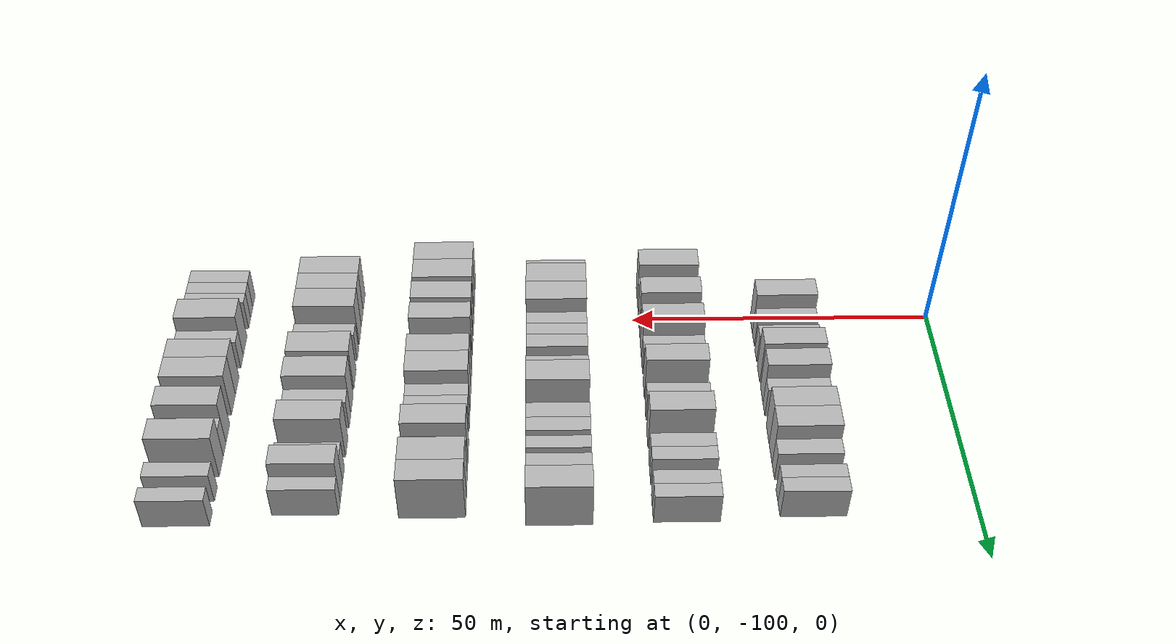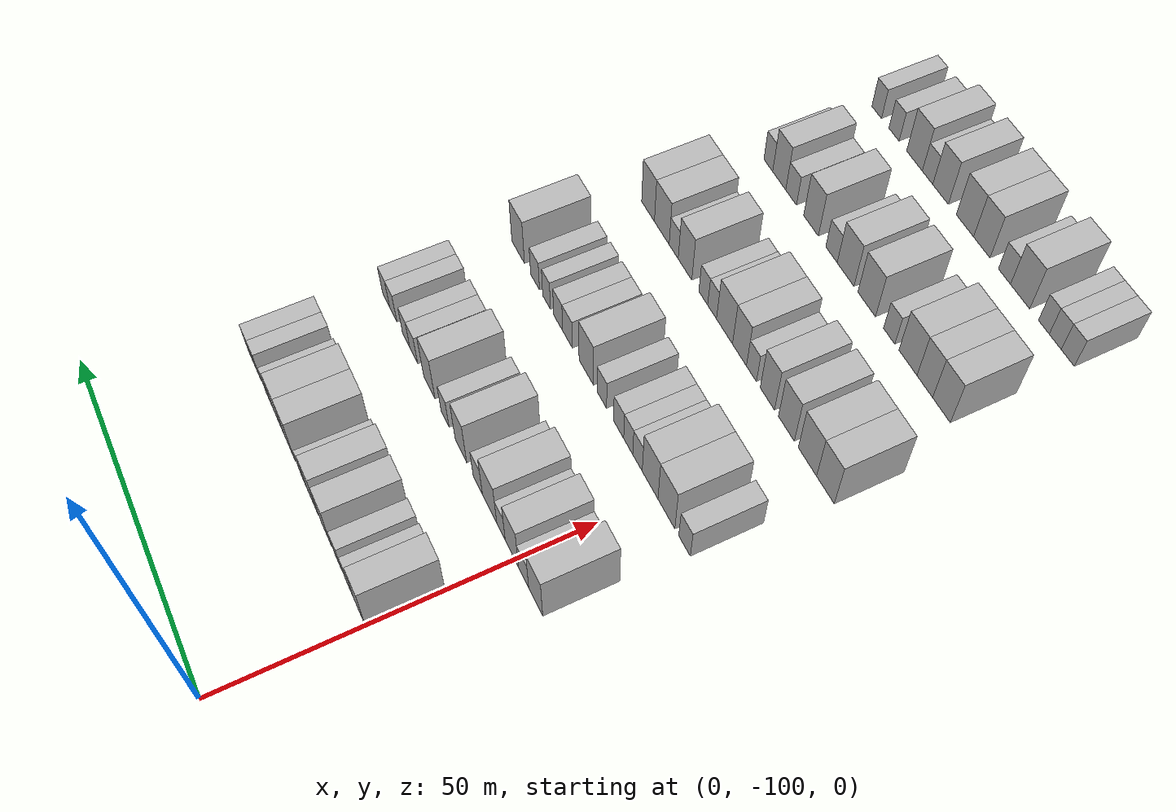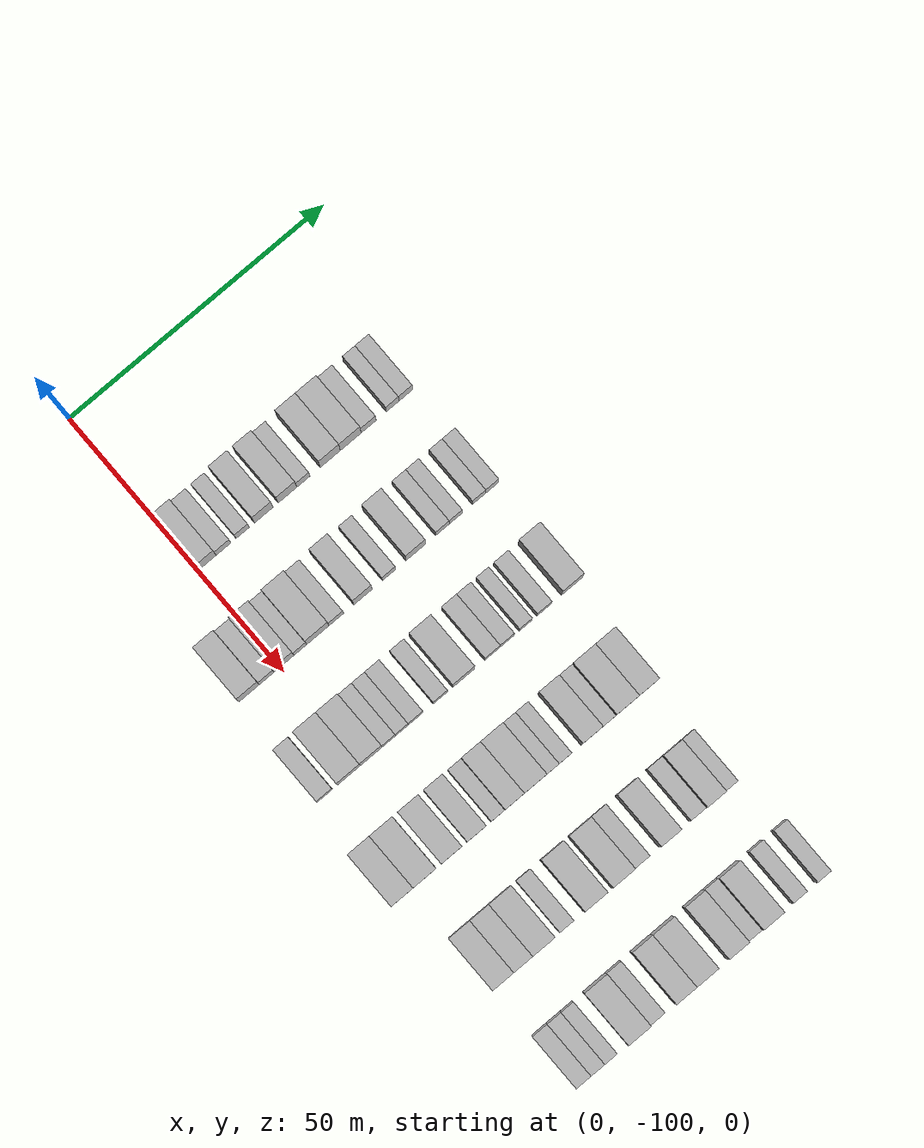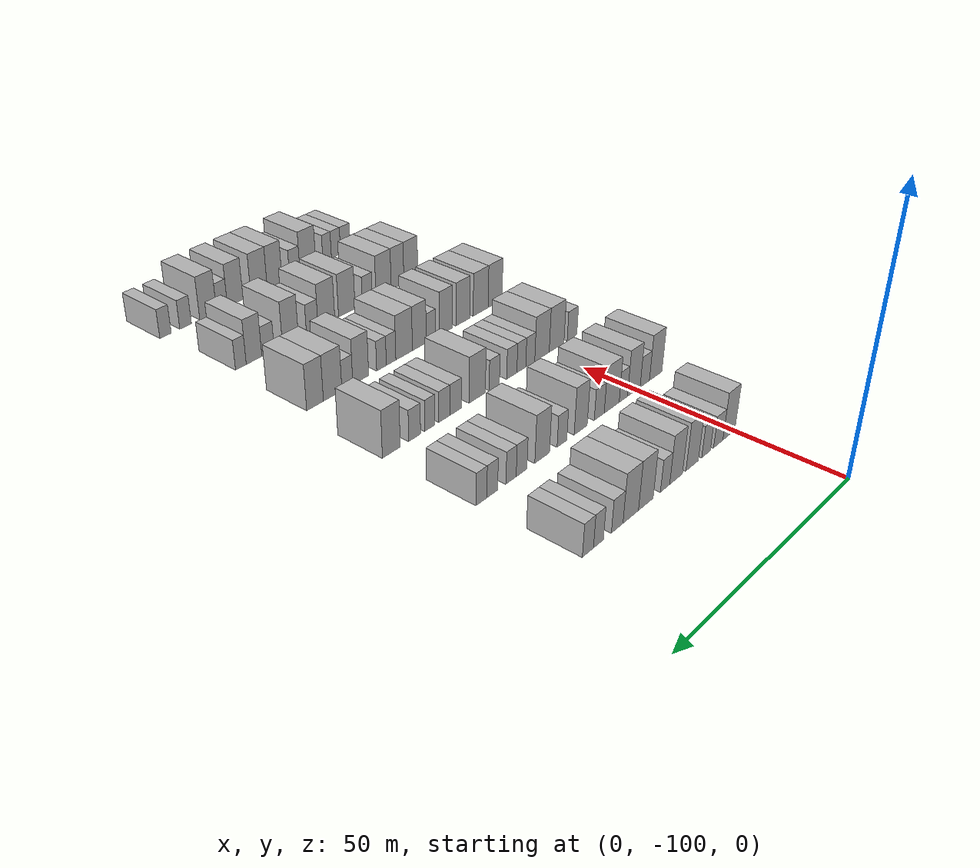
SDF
<sdf version="1.6">
 <world name="default">
  <model name="building_57">
   <static>1</static>
   <pose>25.0000 -98.3331 0 0.000000 0.000000 0.000000</pose>
   <link name="link">
    <pose>0 0 4.50 0 0 0</pose>
    <collision name="collision"><geometry><box><size>10.0000 3.7645 9.0000</size></box></geometry></collision>
    <visual name="visual">
     <cast_shadows>0</cast_shadows>
     <geometry><box><size>10.0000 3.7645 9.0000</size></box></geometry>
     <material>
      <script>
       <uri>model://HANNAS_wall/materials/scripts</uri>
       <uri>model://HANNAS_wall/materials/textures</uri>
       <name>vrc/HANNAS_wall</name>
      </script>
     </material>
    </visual>
   </link>
  </model>
  <model name="building_58">
   <static>1</static>
   <pose>25.0000 -95.0055 0 0.000000 0.000000 0.000000</pose>
   <link name="link">
    <pose>0 0 3.00 0 0 0</pose>
    <collision name="collision"><geometry><box><size>10.0000 2.8907 6.0000</size></box></geometry></collision>
    <visual name="visual">
     <cast_shadows>0</cast_shadows>
     <geometry><box><size>10.0000 2.8907 6.0000</size></box></geometry>
     <material>
      <script>
       <uri>model://HANNAS_wall/materials/scripts</uri>
       <uri>model://HANNAS_wall/materials/textures</uri>
       <name>vrc/HANNAS_wall</name>
      </script>
     </material>
    </visual>
   </link>
  </model>
  <model name="building_59">
   <static>1</static>
   <pose>25.0000 -91.2577 0 0.000000 0.000000 0.000000</pose>
   <link name="link">
    <pose>0 0 3.00 0 0 0</pose>
    <collision name="collision"><geometry><box><size>10.0000 2.6049 6.0000</size></box></geometry></collision>
    <visual name="visual">
     <cast_shadows>0</cast_shadows>
     <geometry><box><size>10.0000 2.6049 6.0000</size></box></geometry>
     <material>
      <script>
       <uri>model://HANNAS_wall/materials/scripts</uri>
       <uri>model://HANNAS_wall/materials/textures</uri>
       <name>vrc/HANNAS_wall</name>
      </script>
     </material>
    </visual>
   </link>
  </model>
  <model name="building_60">
   <static>1</static>
   <pose>25.0000 -87.1309 0 0.000000 0.000000 0.000000</pose>
   <link name="link">
    <pose>0 0 4.50 0 0 0</pose>
    <collision name="collision"><geometry><box><size>10.0000 3.6487 9.0000</size></box></geometry></collision>
    <visual name="visual">
     <cast_shadows>0</cast_shadows>
     <geometry><box><size>10.0000 3.6487 9.0000</size></box></geometry>
     <material>
      <script>
       <uri>model://HANNAS_wall/materials/scripts</uri>
       <uri>model://HANNAS_wall/materials/textures</uri>
       <name>vrc/HANNAS_wall</name>
      </script>
     </material>
    </visual>
   </link>
  </model>
  <model name="building_61">
   <static>1</static>
   <pose>25.0000 -82.4839 0 0.000000 0.000000 0.000000</pose>
   <link name="link">
    <pose>0 0 4.50 0 0 0</pose>
    <collision name="collision"><geometry><box><size>10.0000 3.6453 9.0000</size></box></geometry></collision>
    <visual name="visual">
     <cast_shadows>0</cast_shadows>
     <geometry><box><size>10.0000 3.6453 9.0000</size></box></geometry>
     <material>
      <script>
       <uri>model://HANNAS_wall/materials/scripts</uri>
       <uri>model://HANNAS_wall/materials/textures</uri>
       <name>vrc/HANNAS_wall</name>
      </script>
     </material>
    </visual>
   </link>
  </model>
  <model name="building_62">
   <static>1</static>
   <pose>25.0000 -79.3680 0 0.000000 0.000000 0.000000</pose>
   <link name="link">
    <pose>0 0 3.00 0 0 0</pose>
    <collision name="collision"><geometry><box><size>10.0000 2.5865 6.0000</size></box></geometry></collision>
    <visual name="visual">
     <cast_shadows>0</cast_shadows>
     <geometry><box><size>10.0000 2.5865 6.0000</size></box></geometry>
     <material>
      <script>
       <uri>model://HANNAS_wall/materials/scripts</uri>
       <uri>model://HANNAS_wall/materials/textures</uri>
       <name>vrc/HANNAS_wall</name>
      </script>
     </material>
    </visual>
   </link>
  </model>
  <model name="building_63">
   <static>1</static>
   <pose>25.0000 -74.1008 0 0.000000 0.000000 0.000000</pose>
   <link name="link">
    <pose>0 0 4.50 0 0 0</pose>
    <collision name="collision"><geometry><box><size>10.0000 3.9479 9.0000</size></box></geometry></collision>
    <visual name="visual">
     <cast_shadows>0</cast_shadows>
     <geometry><box><size>10.0000 3.9479 9.0000</size></box></geometry>
     <material>
      <script>
       <uri>model://HANNAS_wall/materials/scripts</uri>
       <uri>model://HANNAS_wall/materials/textures</uri>
       <name>vrc/HANNAS_wall</name>
      </script>
     </material>
    </visual>
   </link>
  </model>
  <model name="building_64">
   <static>1</static>
   <pose>25.0000 -70.0949 0 0.000000 0.000000 0.000000</pose>
   <link name="link">
    <pose>0 0 4.50 0 0 0</pose>
    <collision name="collision"><geometry><box><size>10.0000 4.0637 9.0000</size></box></geometry></collision>
    <visual name="visual">
     <cast_shadows>0</cast_shadows>
     <geometry><box><size>10.0000 4.0637 9.0000</size></box></geometry>
     <material>
      <script>
       <uri>model://HANNAS_wall/materials/scripts</uri>
       <uri>model://HANNAS_wall/materials/textures</uri>
       <name>vrc/HANNAS_wall</name>
      </script>
     </material>
    </visual>
   </link>
  </model>
  <model name="building_65">
   <static>1</static>
   <pose>25.0000 -66.5786 0 0.000000 0.000000 0.000000</pose>
   <link name="link">
    <pose>0 0 3.00 0 0 0</pose>
    <collision name="collision"><geometry><box><size>10.0000 2.9689 6.0000</size></box></geometry></collision>
    <visual name="visual">
     <cast_shadows>0</cast_shadows>
     <geometry><box><size>10.0000 2.9689 6.0000</size></box></geometry>
     <material>
      <script>
       <uri>model://HANNAS_wall/materials/scripts</uri>
       <uri>model://HANNAS_wall/materials/textures</uri>
       <name>vrc/HANNAS_wall</name>
      </script>
     </material>
    </visual>
   </link>
  </model>
  <model name="building_66">
   <static>1</static>
   <pose>25.0000 -61.8662 0 0.000000 0.000000 0.000000</pose>
   <link name="link">
    <pose>0 0 3.00 0 0 0</pose>
    <collision name="collision"><geometry><box><size>10.0000 2.4560 6.0000</size></box></geometry></collision>
    <visual name="visual">
     <cast_shadows>0</cast_shadows>
     <geometry><box><size>10.0000 2.4560 6.0000</size></box></geometry>
     <material>
      <script>
       <uri>model://HANNAS_wall/materials/scripts</uri>
       <uri>model://HANNAS_wall/materials/textures</uri>
       <name>vrc/HANNAS_wall</name>
      </script>
     </material>
    </visual>
   </link>
  </model>
  <model name="building_67">
   <static>1</static>
   <pose>25.0000 -59.2922 0 0.000000 0.000000 0.000000</pose>
   <link name="link">
    <pose>0 0 3.00 0 0 0</pose>
    <collision name="collision"><geometry><box><size>10.0000 2.6919 6.0000</size></box></geometry></collision>
    <visual name="visual">
     <cast_shadows>0</cast_shadows>
     <geometry><box><size>10.0000 2.6919 6.0000</size></box></geometry>
     <material>
      <script>
       <uri>model://HANNAS_wall/materials/scripts</uri>
       <uri>model://HANNAS_wall/materials/textures</uri>
       <name>vrc/HANNAS_wall</name>
      </script>
     </material>
    </visual>
   </link>
  </model>
  <model name="building_219">
   <static>1</static>
   <pose>44.0000 -105.9810 0 0.000000 0.000000 0.000000</pose>
   <link name="link">
    <pose>0 0 4.50 0 0 0</pose>
    <collision name="collision"><geometry><box><size>10.0000 3.9548 9.0000</size></box></geometry></collision>
    <visual name="visual">
     <cast_shadows>0</cast_shadows>
     <geometry><box><size>10.0000 3.9548 9.0000</size></box></geometry>
     <material>
      <script>
       <uri>model://HANNAS_wall/materials/scripts</uri>
       <uri>model://HANNAS_wall/materials/textures</uri>
       <name>vrc/HANNAS_wall</name>
      </script>
     </material>
    </visual>
   </link>
  </model>
  <model name="building_220">
   <static>1</static>
   <pose>44.0000 -102.5574 0 0.000000 0.000000 0.000000</pose>
   <link name="link">
    <pose>0 0 3.00 0 0 0</pose>
    <collision name="collision"><geometry><box><size>10.0000 2.8924 6.0000</size></box></geometry></collision>
    <visual name="visual">
     <cast_shadows>0</cast_shadows>
     <geometry><box><size>10.0000 2.8924 6.0000</size></box></geometry>
     <material>
      <script>
       <uri>model://HANNAS_wall/materials/scripts</uri>
       <uri>model://HANNAS_wall/materials/textures</uri>
       <name>vrc/HANNAS_wall</name>
      </script>
     </material>
    </visual>
   </link>
  </model>
  <model name="building_221">
   <static>1</static>
   <pose>44.0000 -99.1863 0 0.000000 0.000000 0.000000</pose>
   <link name="link">
    <pose>0 0 4.50 0 0 0</pose>
    <collision name="collision"><geometry><box><size>10.0000 3.8497 9.0000</size></box></geometry></collision>
    <visual name="visual">
     <cast_shadows>0</cast_shadows>
     <geometry><box><size>10.0000 3.8497 9.0000</size></box></geometry>
     <material>
      <script>
       <uri>model://HANNAS_wall/materials/scripts</uri>
       <uri>model://HANNAS_wall/materials/textures</uri>
       <name>vrc/HANNAS_wall</name>
      </script>
     </material>
    </visual>
   </link>
  </model>
  <model name="building_222">
   <static>1</static>
   <pose>44.0000 -96.0201 0 0.000000 0.000000 0.000000</pose>
   <link name="link">
    <pose>0 0 3.00 0 0 0</pose>
    <collision name="collision"><geometry><box><size>10.0000 2.4828 6.0000</size></box></geometry></collision>
    <visual name="visual">
     <cast_shadows>0</cast_shadows>
     <geometry><box><size>10.0000 2.4828 6.0000</size></box></geometry>
     <material>
      <script>
       <uri>model://HANNAS_wall/materials/scripts</uri>
       <uri>model://HANNAS_wall/materials/textures</uri>
       <name>vrc/HANNAS_wall</name>
      </script>
     </material>
    </visual>
   </link>
  </model>
  <model name="building_223">
   <static>1</static>
   <pose>44.0000 -92.5894 0 0.000000 0.000000 0.000000</pose>
   <link name="link">
    <pose>0 0 4.50 0 0 0</pose>
    <collision name="collision"><geometry><box><size>10.0000 4.3787 9.0000</size></box></geometry></collision>
    <visual name="visual">
     <cast_shadows>0</cast_shadows>
     <geometry><box><size>10.0000 4.3787 9.0000</size></box></geometry>
     <material>
      <script>
       <uri>model://HANNAS_wall/materials/scripts</uri>
       <uri>model://HANNAS_wall/materials/textures</uri>
       <name>vrc/HANNAS_wall</name>
      </script>
     </material>
    </visual>
   </link>
  </model>
  <model name="building_224">
   <static>1</static>
   <pose>44.0000 -88.9754 0 0.000000 0.000000 0.000000</pose>
   <link name="link">
    <pose>0 0 3.00 0 0 0</pose>
    <collision name="collision"><geometry><box><size>10.0000 2.8493 6.0000</size></box></geometry></collision>
    <visual name="visual">
     <cast_shadows>0</cast_shadows>
     <geometry><box><size>10.0000 2.8493 6.0000</size></box></geometry>
     <material>
      <script>
       <uri>model://HANNAS_wall/materials/scripts</uri>
       <uri>model://HANNAS_wall/materials/textures</uri>
       <name>vrc/HANNAS_wall</name>
      </script>
     </material>
    </visual>
   </link>
  </model>
  <model name="building_225">
   <static>1</static>
   <pose>44.0000 -83.7480 0 0.000000 0.000000 0.000000</pose>
   <link name="link">
    <pose>0 0 4.50 0 0 0</pose>
    <collision name="collision"><geometry><box><size>10.0000 3.6054 9.0000</size></box></geometry></collision>
    <visual name="visual">
     <cast_shadows>0</cast_shadows>
     <geometry><box><size>10.0000 3.6054 9.0000</size></box></geometry>
     <material>
      <script>
       <uri>model://HANNAS_wall/materials/scripts</uri>
       <uri>model://HANNAS_wall/materials/textures</uri>
       <name>vrc/HANNAS_wall</name>
      </script>
     </material>
    </visual>
   </link>
  </model>
  <model name="building_226">
   <static>1</static>
   <pose>44.0000 -78.6449 0 0.000000 0.000000 0.000000</pose>
   <link name="link">
    <pose>0 0 3.00 0 0 0</pose>
    <collision name="collision"><geometry><box><size>10.0000 2.6009 6.0000</size></box></geometry></collision>
    <visual name="visual">
     <cast_shadows>0</cast_shadows>
     <geometry><box><size>10.0000 2.6009 6.0000</size></box></geometry>
     <material>
      <script>
       <uri>model://HANNAS_wall/materials/scripts</uri>
       <uri>model://HANNAS_wall/materials/textures</uri>
       <name>vrc/HANNAS_wall</name>
      </script>
     </material>
    </visual>
   </link>
  </model>
  <model name="building_227">
   <static>1</static>
   <pose>44.0000 -73.4382 0 0.000000 0.000000 0.000000</pose>
   <link name="link">
    <pose>0 0 4.50 0 0 0</pose>
    <collision name="collision"><geometry><box><size>10.0000 3.8125 9.0000</size></box></geometry></collision>
    <visual name="visual">
     <cast_shadows>0</cast_shadows>
     <geometry><box><size>10.0000 3.8125 9.0000</size></box></geometry>
     <material>
      <script>
       <uri>model://HANNAS_wall/materials/scripts</uri>
       <uri>model://HANNAS_wall/materials/textures</uri>
       <name>vrc/HANNAS_wall</name>
      </script>
     </material>
    </visual>
   </link>
  </model>
  <model name="building_228">
   <static>1</static>
   <pose>44.0000 -68.1854 0 0.000000 0.000000 0.000000</pose>
   <link name="link">
    <pose>0 0 3.00 0 0 0</pose>
    <collision name="collision"><geometry><box><size>10.0000 2.6931 6.0000</size></box></geometry></collision>
    <visual name="visual">
     <cast_shadows>0</cast_shadows>
     <geometry><box><size>10.0000 2.6931 6.0000</size></box></geometry>
     <material>
      <script>
       <uri>model://HANNAS_wall/materials/scripts</uri>
       <uri>model://HANNAS_wall/materials/textures</uri>
       <name>vrc/HANNAS_wall</name>
      </script>
     </material>
    </visual>
   </link>
  </model>
  <model name="building_229">
   <static>1</static>
   <pose>44.0000 -65.5705 0 0.000000 0.000000 0.000000</pose>
   <link name="link">
    <pose>0 0 3.00 0 0 0</pose>
    <collision name="collision"><geometry><box><size>10.0000 2.5368 6.0000</size></box></geometry></collision>
    <visual name="visual">
     <cast_shadows>0</cast_shadows>
     <geometry><box><size>10.0000 2.5368 6.0000</size></box></geometry>
     <material>
      <script>
       <uri>model://HANNAS_wall/materials/scripts</uri>
       <uri>model://HANNAS_wall/materials/textures</uri>
       <name>vrc/HANNAS_wall</name>
      </script>
     </material>
    </visual>
   </link>
  </model>
  <model name="building_230">
   <static>1</static>
   <pose>44.0000 -61.0112 0 0.000000 0.000000 0.000000</pose>
   <link name="link">
    <pose>0 0 3.00 0 0 0</pose>
    <collision name="collision"><geometry><box><size>10.0000 2.5818 6.0000</size></box></geometry></collision>
    <visual name="visual">
     <cast_shadows>0</cast_shadows>
     <geometry><box><size>10.0000 2.5818 6.0000</size></box></geometry>
     <material>
      <script>
       <uri>model://HANNAS_wall/materials/scripts</uri>
       <uri>model://HANNAS_wall/materials/textures</uri>
       <name>vrc/HANNAS_wall</name>
      </script>
     </material>
    </visual>
   </link>
  </model>
  <model name="building_231">
   <static>1</static>
   <pose>44.0000 -58.4621 0 0.000000 0.000000 0.000000</pose>
   <link name="link">
    <pose>0 0 3.00 0 0 0</pose>
    <collision name="collision"><geometry><box><size>10.0000 2.5164 6.0000</size></box></geometry></collision>
    <visual name="visual">
     <cast_shadows>0</cast_shadows>
     <geometry><box><size>10.0000 2.5164 6.0000</size></box></geometry>
     <material>
      <script>
       <uri>model://HANNAS_wall/materials/scripts</uri>
       <uri>model://HANNAS_wall/materials/textures</uri>
       <name>vrc/HANNAS_wall</name>
      </script>
     </material>
    </visual>
   </link>
  </model>
  <model name="building_388">
   <static>1</static>
   <pose>63.0000 -107.2550 0 0.000000 0.000000 0.000000</pose>
   <link name="link">
    <pose>0 0 3.00 0 0 0</pose>
    <collision name="collision"><geometry><box><size>10.0000 2.9859 6.0000</size></box></geometry></collision>
    <visual name="visual">
     <cast_shadows>0</cast_shadows>
     <geometry><box><size>10.0000 2.9859 6.0000</size></box></geometry>
     <material>
      <script>
       <uri>model://HANNAS_wall/materials/scripts</uri>
       <uri>model://HANNAS_wall/materials/textures</uri>
       <name>vrc/HANNAS_wall</name>
      </script>
     </material>
    </visual>
   </link>
  </model>
  <model name="building_389">
   <static>1</static>
   <pose>63.0000 -102.5409 0 0.000000 0.000000 0.000000</pose>
   <link name="link">
    <pose>0 0 4.50 0 0 0</pose>
    <collision name="collision"><geometry><box><size>10.0000 4.4423 9.0000</size></box></geometry></collision>
    <visual name="visual">
     <cast_shadows>0</cast_shadows>
     <geometry><box><size>10.0000 4.4423 9.0000</size></box></geometry>
     <material>
      <script>
       <uri>model://HANNAS_wall/materials/scripts</uri>
       <uri>model://HANNAS_wall/materials/textures</uri>
       <name>vrc/HANNAS_wall</name>
      </script>
     </material>
    </visual>
   </link>
  </model>
  <model name="building_390">
   <static>1</static>
   <pose>63.0000 -98.1974 0 0.000000 0.000000 0.000000</pose>
   <link name="link">
    <pose>0 0 4.50 0 0 0</pose>
    <collision name="collision"><geometry><box><size>10.0000 4.2447 9.0000</size></box></geometry></collision>
    <visual name="visual">
     <cast_shadows>0</cast_shadows>
     <geometry><box><size>10.0000 4.2447 9.0000</size></box></geometry>
     <material>
      <script>
       <uri>model://HANNAS_wall/materials/scripts</uri>
       <uri>model://HANNAS_wall/materials/textures</uri>
       <name>vrc/HANNAS_wall</name>
      </script>
     </material>
    </visual>
   </link>
  </model>
  <model name="building_391">
   <static>1</static>
   <pose>63.0000 -94.7735 0 0.000000 0.000000 0.000000</pose>
   <link name="link">
    <pose>0 0 3.00 0 0 0</pose>
    <collision name="collision"><geometry><box><size>10.0000 2.6032 6.0000</size></box></geometry></collision>
    <visual name="visual">
     <cast_shadows>0</cast_shadows>
     <geometry><box><size>10.0000 2.6032 6.0000</size></box></geometry>
     <material>
      <script>
       <uri>model://HANNAS_wall/materials/scripts</uri>
       <uri>model://HANNAS_wall/materials/textures</uri>
       <name>vrc/HANNAS_wall</name>
      </script>
     </material>
    </visual>
   </link>
  </model>
  <model name="building_392">
   <static>1</static>
   <pose>63.0000 -92.2117 0 0.000000 0.000000 0.000000</pose>
   <link name="link">
    <pose>0 0 3.00 0 0 0</pose>
    <collision name="collision"><geometry><box><size>10.0000 2.5205 6.0000</size></box></geometry></collision>
    <visual name="visual">
     <cast_shadows>0</cast_shadows>
     <geometry><box><size>10.0000 2.5205 6.0000</size></box></geometry>
     <material>
      <script>
       <uri>model://HANNAS_wall/materials/scripts</uri>
       <uri>model://HANNAS_wall/materials/textures</uri>
       <name>vrc/HANNAS_wall</name>
      </script>
     </material>
    </visual>
   </link>
  </model>
  <model name="building_393">
   <static>1</static>
   <pose>63.0000 -89.5245 0 0.000000 0.000000 0.000000</pose>
   <link name="link">
    <pose>0 0 3.00 0 0 0</pose>
    <collision name="collision"><geometry><box><size>10.0000 2.8540 6.0000</size></box></geometry></collision>
    <visual name="visual">
     <cast_shadows>0</cast_shadows>
     <geometry><box><size>10.0000 2.8540 6.0000</size></box></geometry>
     <material>
      <script>
       <uri>model://HANNAS_wall/materials/scripts</uri>
       <uri>model://HANNAS_wall/materials/textures</uri>
       <name>vrc/HANNAS_wall</name>
      </script>
     </material>
    </visual>
   </link>
  </model>
  <model name="building_394">
   <static>1</static>
   <pose>63.0000 -84.7015 0 0.000000 0.000000 0.000000</pose>
   <link name="link">
    <pose>0 0 3.00 0 0 0</pose>
    <collision name="collision"><geometry><box><size>10.0000 2.7919 6.0000</size></box></geometry></collision>
    <visual name="visual">
     <cast_shadows>0</cast_shadows>
     <geometry><box><size>10.0000 2.7919 6.0000</size></box></geometry>
     <material>
      <script>
       <uri>model://HANNAS_wall/materials/scripts</uri>
       <uri>model://HANNAS_wall/materials/textures</uri>
       <name>vrc/HANNAS_wall</name>
      </script>
     </material>
    </visual>
   </link>
  </model>
  <model name="building_395">
   <static>1</static>
   <pose>63.0000 -80.1676 0 0.000000 0.000000 0.000000</pose>
   <link name="link">
    <pose>0 0 4.50 0 0 0</pose>
    <collision name="collision"><geometry><box><size>10.0000 4.2760 9.0000</size></box></geometry></collision>
    <visual name="visual">
     <cast_shadows>0</cast_shadows>
     <geometry><box><size>10.0000 4.2760 9.0000</size></box></geometry>
     <material>
      <script>
       <uri>model://HANNAS_wall/materials/scripts</uri>
       <uri>model://HANNAS_wall/materials/textures</uri>
       <name>vrc/HANNAS_wall</name>
      </script>
     </material>
    </visual>
   </link>
  </model>
  <model name="building_396">
   <static>1</static>
   <pose>63.0000 -74.5319 0 0.000000 0.000000 0.000000</pose>
   <link name="link">
    <pose>0 0 3.00 0 0 0</pose>
    <collision name="collision"><geometry><box><size>10.0000 2.9956 6.0000</size></box></geometry></collision>
    <visual name="visual">
     <cast_shadows>0</cast_shadows>
     <geometry><box><size>10.0000 2.9956 6.0000</size></box></geometry>
     <material>
      <script>
       <uri>model://HANNAS_wall/materials/scripts</uri>
       <uri>model://HANNAS_wall/materials/textures</uri>
       <name>vrc/HANNAS_wall</name>
      </script>
     </material>
    </visual>
   </link>
  </model>
  <model name="building_397">
   <static>1</static>
   <pose>63.0000 -71.6559 0 0.000000 0.000000 0.000000</pose>
   <link name="link">
    <pose>0 0 3.00 0 0 0</pose>
    <collision name="collision"><geometry><box><size>10.0000 2.7564 6.0000</size></box></geometry></collision>
    <visual name="visual">
     <cast_shadows>0</cast_shadows>
     <geometry><box><size>10.0000 2.7564 6.0000</size></box></geometry>
     <material>
      <script>
       <uri>model://HANNAS_wall/materials/scripts</uri>
       <uri>model://HANNAS_wall/materials/textures</uri>
       <name>vrc/HANNAS_wall</name>
      </script>
     </material>
    </visual>
   </link>
  </model>
  <model name="building_398">
   <static>1</static>
   <pose>63.0000 -68.0460 0 0.000000 0.000000 0.000000</pose>
   <link name="link">
    <pose>0 0 3.00 0 0 0</pose>
    <collision name="collision"><geometry><box><size>10.0000 2.4634 6.0000</size></box></geometry></collision>
    <visual name="visual">
     <cast_shadows>0</cast_shadows>
     <geometry><box><size>10.0000 2.4634 6.0000</size></box></geometry>
     <material>
      <script>
       <uri>model://HANNAS_wall/materials/scripts</uri>
       <uri>model://HANNAS_wall/materials/textures</uri>
       <name>vrc/HANNAS_wall</name>
      </script>
     </material>
    </visual>
   </link>
  </model>
  <model name="building_399">
   <static>1</static>
   <pose>63.0000 -64.3918 0 0.000000 0.000000 0.000000</pose>
   <link name="link">
    <pose>0 0 3.00 0 0 0</pose>
    <collision name="collision"><geometry><box><size>10.0000 2.8451 6.0000</size></box></geometry></collision>
    <visual name="visual">
     <cast_shadows>0</cast_shadows>
     <geometry><box><size>10.0000 2.8451 6.0000</size></box></geometry>
     <material>
      <script>
       <uri>model://HANNAS_wall/materials/scripts</uri>
       <uri>model://HANNAS_wall/materials/textures</uri>
       <name>vrc/HANNAS_wall</name>
      </script>
     </material>
    </visual>
   </link>
  </model>
  <model name="building_400">
   <static>1</static>
   <pose>63.0000 -58.9068 0 0.000000 0.000000 0.000000</pose>
   <link name="link">
    <pose>0 0 4.50 0 0 0</pose>
    <collision name="collision"><geometry><box><size>10.0000 4.1250 9.0000</size></box></geometry></collision>
    <visual name="visual">
     <cast_shadows>0</cast_shadows>
     <geometry><box><size>10.0000 4.1250 9.0000</size></box></geometry>
     <material>
      <script>
       <uri>model://HANNAS_wall/materials/scripts</uri>
       <uri>model://HANNAS_wall/materials/textures</uri>
       <name>vrc/HANNAS_wall</name>
      </script>
     </material>
    </visual>
   </link>
  </model>
  <model name="building_560">
   <static>1</static>
   <pose>82.0000 -108.1611 0 0.000000 0.000000 0.000000</pose>
   <link name="link">
    <pose>0 0 4.50 0 0 0</pose>
    <collision name="collision"><geometry><box><size>10.0000 4.2252 9.0000</size></box></geometry></collision>
    <visual name="visual">
     <cast_shadows>0</cast_shadows>
     <geometry><box><size>10.0000 4.2252 9.0000</size></box></geometry>
     <material>
      <script>
       <uri>model://HANNAS_wall/materials/scripts</uri>
       <uri>model://HANNAS_wall/materials/textures</uri>
       <name>vrc/HANNAS_wall</name>
      </script>
     </material>
    </visual>
   </link>
  </model>
  <model name="building_561">
   <static>1</static>
   <pose>82.0000 -103.8246 0 0.000000 0.000000 0.000000</pose>
   <link name="link">
    <pose>0 0 4.50 0 0 0</pose>
    <collision name="collision"><geometry><box><size>10.0000 4.4479 9.0000</size></box></geometry></collision>
    <visual name="visual">
     <cast_shadows>0</cast_shadows>
     <geometry><box><size>10.0000 4.4479 9.0000</size></box></geometry>
     <material>
      <script>
       <uri>model://HANNAS_wall/materials/scripts</uri>
       <uri>model://HANNAS_wall/materials/textures</uri>
       <name>vrc/HANNAS_wall</name>
      </script>
     </material>
    </visual>
   </link>
  </model>
  <model name="building_562">
   <static>1</static>
   <pose>82.0000 -98.6031 0 0.000000 0.000000 0.000000</pose>
   <link name="link">
    <pose>0 0 4.50 0 0 0</pose>
    <collision name="collision"><geometry><box><size>10.0000 3.9950 9.0000</size></box></geometry></collision>
    <visual name="visual">
     <cast_shadows>0</cast_shadows>
     <geometry><box><size>10.0000 3.9950 9.0000</size></box></geometry>
     <material>
      <script>
       <uri>model://HANNAS_wall/materials/scripts</uri>
       <uri>model://HANNAS_wall/materials/textures</uri>
       <name>vrc/HANNAS_wall</name>
      </script>
     </material>
    </visual>
   </link>
  </model>
  <model name="building_563">
   <static>1</static>
   <pose>82.0000 -93.7650 0 0.000000 0.000000 0.000000</pose>
   <link name="link">
    <pose>0 0 4.50 0 0 0</pose>
    <collision name="collision"><geometry><box><size>10.0000 3.6813 9.0000</size></box></geometry></collision>
    <visual name="visual">
     <cast_shadows>0</cast_shadows>
     <geometry><box><size>10.0000 3.6813 9.0000</size></box></geometry>
     <material>
      <script>
       <uri>model://HANNAS_wall/materials/scripts</uri>
       <uri>model://HANNAS_wall/materials/textures</uri>
       <name>vrc/HANNAS_wall</name>
      </script>
     </material>
    </visual>
   </link>
  </model>
  <model name="building_564">
   <static>1</static>
   <pose>82.0000 -89.6094 0 0.000000 0.000000 0.000000</pose>
   <link name="link">
    <pose>0 0 3.00 0 0 0</pose>
    <collision name="collision"><geometry><box><size>10.0000 2.6299 6.0000</size></box></geometry></collision>
    <visual name="visual">
     <cast_shadows>0</cast_shadows>
     <geometry><box><size>10.0000 2.6299 6.0000</size></box></geometry>
     <material>
      <script>
       <uri>model://HANNAS_wall/materials/scripts</uri>
       <uri>model://HANNAS_wall/materials/textures</uri>
       <name>vrc/HANNAS_wall</name>
      </script>
     </material>
    </visual>
   </link>
  </model>
  <model name="building_565">
   <static>1</static>
   <pose>82.0000 -86.4310 0 0.000000 0.000000 0.000000</pose>
   <link name="link">
    <pose>0 0 4.50 0 0 0</pose>
    <collision name="collision"><geometry><box><size>10.0000 3.7268 9.0000</size></box></geometry></collision>
    <visual name="visual">
     <cast_shadows>0</cast_shadows>
     <geometry><box><size>10.0000 3.7268 9.0000</size></box></geometry>
     <material>
      <script>
       <uri>model://HANNAS_wall/materials/scripts</uri>
       <uri>model://HANNAS_wall/materials/textures</uri>
       <name>vrc/HANNAS_wall</name>
      </script>
     </material>
    </visual>
   </link>
  </model>
  <model name="building_566">
   <static>1</static>
   <pose>82.0000 -82.3873 0 0.000000 0.000000 0.000000</pose>
   <link name="link">
    <pose>0 0 4.50 0 0 0</pose>
    <collision name="collision"><geometry><box><size>10.0000 4.3607 9.0000</size></box></geometry></collision>
    <visual name="visual">
     <cast_shadows>0</cast_shadows>
     <geometry><box><size>10.0000 4.3607 9.0000</size></box></geometry>
     <material>
      <script>
       <uri>model://HANNAS_wall/materials/scripts</uri>
       <uri>model://HANNAS_wall/materials/textures</uri>
       <name>vrc/HANNAS_wall</name>
      </script>
     </material>
    </visual>
   </link>
  </model>
  <model name="building_567">
   <static>1</static>
   <pose>82.0000 -78.9762 0 0.000000 0.000000 0.000000</pose>
   <link name="link">
    <pose>0 0 3.00 0 0 0</pose>
    <collision name="collision"><geometry><box><size>10.0000 2.4615 6.0000</size></box></geometry></collision>
    <visual name="visual">
     <cast_shadows>0</cast_shadows>
     <geometry><box><size>10.0000 2.4615 6.0000</size></box></geometry>
     <material>
      <script>
       <uri>model://HANNAS_wall/materials/scripts</uri>
       <uri>model://HANNAS_wall/materials/textures</uri>
       <name>vrc/HANNAS_wall</name>
      </script>
     </material>
    </visual>
   </link>
  </model>
  <model name="building_568">
   <static>1</static>
   <pose>82.0000 -76.5109 0 0.000000 0.000000 0.000000</pose>
   <link name="link">
    <pose>0 0 3.00 0 0 0</pose>
    <collision name="collision"><geometry><box><size>10.0000 2.4691 6.0000</size></box></geometry></collision>
    <visual name="visual">
     <cast_shadows>0</cast_shadows>
     <geometry><box><size>10.0000 2.4691 6.0000</size></box></geometry>
     <material>
      <script>
       <uri>model://HANNAS_wall/materials/scripts</uri>
       <uri>model://HANNAS_wall/materials/textures</uri>
       <name>vrc/HANNAS_wall</name>
      </script>
     </material>
    </visual>
   </link>
  </model>
  <model name="building_569">
   <static>1</static>
   <pose>82.0000 -71.3102 0 0.000000 0.000000 0.000000</pose>
   <link name="link">
    <pose>0 0 4.50 0 0 0</pose>
    <collision name="collision"><geometry><box><size>10.0000 3.9322 9.0000</size></box></geometry></collision>
    <visual name="visual">
     <cast_shadows>0</cast_shadows>
     <geometry><box><size>10.0000 3.9322 9.0000</size></box></geometry>
     <material>
      <script>
       <uri>model://HANNAS_wall/materials/scripts</uri>
       <uri>model://HANNAS_wall/materials/textures</uri>
       <name>vrc/HANNAS_wall</name>
      </script>
     </material>
    </visual>
   </link>
  </model>
  <model name="building_570">
   <static>1</static>
   <pose>82.0000 -68.0171 0 0.000000 0.000000 0.000000</pose>
   <link name="link">
    <pose>0 0 3.00 0 0 0</pose>
    <collision name="collision"><geometry><box><size>10.0000 2.6540 6.0000</size></box></geometry></collision>
    <visual name="visual">
     <cast_shadows>0</cast_shadows>
     <geometry><box><size>10.0000 2.6540 6.0000</size></box></geometry>
     <material>
      <script>
       <uri>model://HANNAS_wall/materials/scripts</uri>
       <uri>model://HANNAS_wall/materials/textures</uri>
       <name>vrc/HANNAS_wall</name>
      </script>
     </material>
    </visual>
   </link>
  </model>
  <model name="building_571">
   <static>1</static>
   <pose>82.0000 -64.5013 0 0.000000 0.000000 0.000000</pose>
   <link name="link">
    <pose>0 0 4.50 0 0 0</pose>
    <collision name="collision"><geometry><box><size>10.0000 4.3776 9.0000</size></box></geometry></collision>
    <visual name="visual">
     <cast_shadows>0</cast_shadows>
     <geometry><box><size>10.0000 4.3776 9.0000</size></box></geometry>
     <material>
      <script>
       <uri>model://HANNAS_wall/materials/scripts</uri>
       <uri>model://HANNAS_wall/materials/textures</uri>
       <name>vrc/HANNAS_wall</name>
      </script>
     </material>
    </visual>
   </link>
  </model>
  <model name="building_572">
   <static>1</static>
   <pose>82.0000 -60.3708 0 0.000000 0.000000 0.000000</pose>
   <link name="link">
    <pose>0 0 4.50 0 0 0</pose>
    <collision name="collision"><geometry><box><size>10.0000 3.8835 9.0000</size></box></geometry></collision>
    <visual name="visual">
     <cast_shadows>0</cast_shadows>
     <geometry><box><size>10.0000 3.8835 9.0000</size></box></geometry>
     <material>
      <script>
       <uri>model://HANNAS_wall/materials/scripts</uri>
       <uri>model://HANNAS_wall/materials/textures</uri>
       <name>vrc/HANNAS_wall</name>
      </script>
     </material>
    </visual>
   </link>
  </model>
  <model name="building_742">
   <static>1</static>
   <pose>101.0000 -104.8391 0 0.000000 0.000000 0.000000</pose>
   <link name="link">
    <pose>0 0 4.50 0 0 0</pose>
    <collision name="collision"><geometry><box><size>10.0000 4.0825 9.0000</size></box></geometry></collision>
    <visual name="visual">
     <cast_shadows>0</cast_shadows>
     <geometry><box><size>10.0000 4.0825 9.0000</size></box></geometry>
     <material>
      <script>
       <uri>model://HANNAS_wall/materials/scripts</uri>
       <uri>model://HANNAS_wall/materials/textures</uri>
       <name>vrc/HANNAS_wall</name>
      </script>
     </material>
    </visual>
   </link>
  </model>
  <model name="building_743">
   <static>1</static>
   <pose>101.0000 -100.9646 0 0.000000 0.000000 0.000000</pose>
   <link name="link">
    <pose>0 0 4.50 0 0 0</pose>
    <collision name="collision"><geometry><box><size>10.0000 3.6664 9.0000</size></box></geometry></collision>
    <visual name="visual">
     <cast_shadows>0</cast_shadows>
     <geometry><box><size>10.0000 3.6664 9.0000</size></box></geometry>
     <material>
      <script>
       <uri>model://HANNAS_wall/materials/scripts</uri>
       <uri>model://HANNAS_wall/materials/textures</uri>
       <name>vrc/HANNAS_wall</name>
      </script>
     </material>
    </visual>
   </link>
  </model>
  <model name="building_744">
   <static>1</static>
   <pose>101.0000 -96.9750 0 0.000000 0.000000 0.000000</pose>
   <link name="link">
    <pose>0 0 4.50 0 0 0</pose>
    <collision name="collision"><geometry><box><size>10.0000 4.3130 9.0000</size></box></geometry></collision>
    <visual name="visual">
     <cast_shadows>0</cast_shadows>
     <geometry><box><size>10.0000 4.3130 9.0000</size></box></geometry>
     <material>
      <script>
       <uri>model://HANNAS_wall/materials/scripts</uri>
       <uri>model://HANNAS_wall/materials/textures</uri>
       <name>vrc/HANNAS_wall</name>
      </script>
     </material>
    </visual>
   </link>
  </model>
  <model name="building_745">
   <static>1</static>
   <pose>101.0000 -92.4368 0 0.000000 0.000000 0.000000</pose>
   <link name="link">
    <pose>0 0 3.00 0 0 0</pose>
    <collision name="collision"><geometry><box><size>10.0000 2.7633 6.0000</size></box></geometry></collision>
    <visual name="visual">
     <cast_shadows>0</cast_shadows>
     <geometry><box><size>10.0000 2.7633 6.0000</size></box></geometry>
     <material>
      <script>
       <uri>model://HANNAS_wall/materials/scripts</uri>
       <uri>model://HANNAS_wall/materials/textures</uri>
       <name>vrc/HANNAS_wall</name>
      </script>
     </material>
    </visual>
   </link>
  </model>
  <model name="building_746">
   <static>1</static>
   <pose>101.0000 -86.8443 0 0.000000 0.000000 0.000000</pose>
   <link name="link">
    <pose>0 0 4.50 0 0 0</pose>
    <collision name="collision"><geometry><box><size>10.0000 4.4216 9.0000</size></box></geometry></collision>
    <visual name="visual">
     <cast_shadows>0</cast_shadows>
     <geometry><box><size>10.0000 4.4216 9.0000</size></box></geometry>
     <material>
      <script>
       <uri>model://HANNAS_wall/materials/scripts</uri>
       <uri>model://HANNAS_wall/materials/textures</uri>
       <name>vrc/HANNAS_wall</name>
      </script>
     </material>
    </visual>
   </link>
  </model>
  <model name="building_747">
   <static>1</static>
   <pose>101.0000 -81.4653 0 0.000000 0.000000 0.000000</pose>
   <link name="link">
    <pose>0 0 4.50 0 0 0</pose>
    <collision name="collision"><geometry><box><size>10.0000 4.3365 9.0000</size></box></geometry></collision>
    <visual name="visual">
     <cast_shadows>0</cast_shadows>
     <geometry><box><size>10.0000 4.3365 9.0000</size></box></geometry>
     <material>
      <script>
       <uri>model://HANNAS_wall/materials/scripts</uri>
       <uri>model://HANNAS_wall/materials/textures</uri>
       <name>vrc/HANNAS_wall</name>
      </script>
     </material>
    </visual>
   </link>
  </model>
  <model name="building_748">
   <static>1</static>
   <pose>101.0000 -77.8051 0 0.000000 0.000000 0.000000</pose>
   <link name="link">
    <pose>0 0 3.00 0 0 0</pose>
    <collision name="collision"><geometry><box><size>10.0000 2.9838 6.0000</size></box></geometry></collision>
    <visual name="visual">
     <cast_shadows>0</cast_shadows>
     <geometry><box><size>10.0000 2.9838 6.0000</size></box></geometry>
     <material>
      <script>
       <uri>model://HANNAS_wall/materials/scripts</uri>
       <uri>model://HANNAS_wall/materials/textures</uri>
       <name>vrc/HANNAS_wall</name>
      </script>
     </material>
    </visual>
   </link>
  </model>
  <model name="building_749">
   <static>1</static>
   <pose>101.0000 -72.3344 0 0.000000 0.000000 0.000000</pose>
   <link name="link">
    <pose>0 0 4.50 0 0 0</pose>
    <collision name="collision"><geometry><box><size>10.0000 3.9576 9.0000</size></box></geometry></collision>
    <visual name="visual">
     <cast_shadows>0</cast_shadows>
     <geometry><box><size>10.0000 3.9576 9.0000</size></box></geometry>
     <material>
      <script>
       <uri>model://HANNAS_wall/materials/scripts</uri>
       <uri>model://HANNAS_wall/materials/textures</uri>
       <name>vrc/HANNAS_wall</name>
      </script>
     </material>
    </visual>
   </link>
  </model>
  <model name="building_750">
   <static>1</static>
   <pose>101.0000 -66.8723 0 0.000000 0.000000 0.000000</pose>
   <link name="link">
    <pose>0 0 3.00 0 0 0</pose>
    <collision name="collision"><geometry><box><size>10.0000 2.9666 6.0000</size></box></geometry></collision>
    <visual name="visual">
     <cast_shadows>0</cast_shadows>
     <geometry><box><size>10.0000 2.9666 6.0000</size></box></geometry>
     <material>
      <script>
       <uri>model://HANNAS_wall/materials/scripts</uri>
       <uri>model://HANNAS_wall/materials/textures</uri>
       <name>vrc/HANNAS_wall</name>
      </script>
     </material>
    </visual>
   </link>
  </model>
  <model name="building_751">
   <static>1</static>
   <pose>101.0000 -63.5498 0 0.000000 0.000000 0.000000</pose>
   <link name="link">
    <pose>0 0 4.50 0 0 0</pose>
    <collision name="collision"><geometry><box><size>10.0000 3.6783 9.0000</size></box></geometry></collision>
    <visual name="visual">
     <cast_shadows>0</cast_shadows>
     <geometry><box><size>10.0000 3.6783 9.0000</size></box></geometry>
     <material>
      <script>
       <uri>model://HANNAS_wall/materials/scripts</uri>
       <uri>model://HANNAS_wall/materials/textures</uri>
       <name>vrc/HANNAS_wall</name>
      </script>
     </material>
    </visual>
   </link>
  </model>
  <model name="building_752">
   <static>1</static>
   <pose>101.0000 -60.4638 0 0.000000 0.000000 0.000000</pose>
   <link name="link">
    <pose>0 0 3.00 0 0 0</pose>
    <collision name="collision"><geometry><box><size>10.0000 2.4937 6.0000</size></box></geometry></collision>
    <visual name="visual">
     <cast_shadows>0</cast_shadows>
     <geometry><box><size>10.0000 2.4937 6.0000</size></box></geometry>
     <material>
      <script>
       <uri>model://HANNAS_wall/materials/scripts</uri>
       <uri>model://HANNAS_wall/materials/textures</uri>
       <name>vrc/HANNAS_wall</name>
      </script>
     </material>
    </visual>
   </link>
  </model>
  <model name="building_909">
   <static>1</static>
   <pose>120.0000 -105.3957 0 0.000000 0.000000 0.000000</pose>
   <link name="link">
    <pose>0 0 3.00 0 0 0</pose>
    <collision name="collision"><geometry><box><size>10.0000 2.8636 6.0000</size></box></geometry></collision>
    <visual name="visual">
     <cast_shadows>0</cast_shadows>
     <geometry><box><size>10.0000 2.8636 6.0000</size></box></geometry>
     <material>
      <script>
       <uri>model://HANNAS_wall/materials/scripts</uri>
       <uri>model://HANNAS_wall/materials/textures</uri>
       <name>vrc/HANNAS_wall</name>
      </script>
     </material>
    </visual>
   </link>
  </model>
  <model name="building_910">
   <static>1</static>
   <pose>120.0000 -102.6345 0 0.000000 0.000000 0.000000</pose>
   <link name="link">
    <pose>0 0 3.00 0 0 0</pose>
    <collision name="collision"><geometry><box><size>10.0000 2.6588 6.0000</size></box></geometry></collision>
    <visual name="visual">
     <cast_shadows>0</cast_shadows>
     <geometry><box><size>10.0000 2.6588 6.0000</size></box></geometry>
     <material>
      <script>
       <uri>model://HANNAS_wall/materials/scripts</uri>
       <uri>model://HANNAS_wall/materials/textures</uri>
       <name>vrc/HANNAS_wall</name>
      </script>
     </material>
    </visual>
   </link>
  </model>
  <model name="building_911">
   <static>1</static>
   <pose>120.0000 -100.0961 0 0.000000 0.000000 0.000000</pose>
   <link name="link">
    <pose>0 0 3.00 0 0 0</pose>
    <collision name="collision"><geometry><box><size>10.0000 2.4180 6.0000</size></box></geometry></collision>
    <visual name="visual">
     <cast_shadows>0</cast_shadows>
     <geometry><box><size>10.0000 2.4180 6.0000</size></box></geometry>
     <material>
      <script>
       <uri>model://HANNAS_wall/materials/scripts</uri>
       <uri>model://HANNAS_wall/materials/textures</uri>
       <name>vrc/HANNAS_wall</name>
      </script>
     </material>
    </visual>
   </link>
  </model>
  <model name="building_912">
   <static>1</static>
   <pose>120.0000 -94.6797 0 0.000000 0.000000 0.000000</pose>
   <link name="link">
    <pose>0 0 4.50 0 0 0</pose>
    <collision name="collision"><geometry><box><size>10.0000 4.4148 9.0000</size></box></geometry></collision>
    <visual name="visual">
     <cast_shadows>0</cast_shadows>
     <geometry><box><size>10.0000 4.4148 9.0000</size></box></geometry>
     <material>
      <script>
       <uri>model://HANNAS_wall/materials/scripts</uri>
       <uri>model://HANNAS_wall/materials/textures</uri>
       <name>vrc/HANNAS_wall</name>
      </script>
     </material>
    </visual>
   </link>
  </model>
  <model name="building_913">
   <static>1</static>
   <pose>120.0000 -91.0567 0 0.000000 0.000000 0.000000</pose>
   <link name="link">
    <pose>0 0 3.00 0 0 0</pose>
    <collision name="collision"><geometry><box><size>10.0000 2.8311 6.0000</size></box></geometry></collision>
    <visual name="visual">
     <cast_shadows>0</cast_shadows>
     <geometry><box><size>10.0000 2.8311 6.0000</size></box></geometry>
     <material>
      <script>
       <uri>model://HANNAS_wall/materials/scripts</uri>
       <uri>model://HANNAS_wall/materials/textures</uri>
       <name>vrc/HANNAS_wall</name>
      </script>
     </material>
    </visual>
   </link>
  </model>
  <model name="building_914">
   <static>1</static>
   <pose>120.0000 -85.6628 0 0.000000 0.000000 0.000000</pose>
   <link name="link">
    <pose>0 0 4.50 0 0 0</pose>
    <collision name="collision"><geometry><box><size>10.0000 3.9566 9.0000</size></box></geometry></collision>
    <visual name="visual">
     <cast_shadows>0</cast_shadows>
     <geometry><box><size>10.0000 3.9566 9.0000</size></box></geometry>
     <material>
      <script>
       <uri>model://HANNAS_wall/materials/scripts</uri>
       <uri>model://HANNAS_wall/materials/textures</uri>
       <name>vrc/HANNAS_wall</name>
      </script>
     </material>
    </visual>
   </link>
  </model>
  <model name="building_915">
   <static>1</static>
   <pose>120.0000 -81.5629 0 0.000000 0.000000 0.000000</pose>
   <link name="link">
    <pose>0 0 4.50 0 0 0</pose>
    <collision name="collision"><geometry><box><size>10.0000 4.2431 9.0000</size></box></geometry></collision>
    <visual name="visual">
     <cast_shadows>0</cast_shadows>
     <geometry><box><size>10.0000 4.2431 9.0000</size></box></geometry>
     <material>
      <script>
       <uri>model://HANNAS_wall/materials/scripts</uri>
       <uri>model://HANNAS_wall/materials/textures</uri>
       <name>vrc/HANNAS_wall</name>
      </script>
     </material>
    </visual>
   </link>
  </model>
  <model name="building_916">
   <static>1</static>
   <pose>120.0000 -75.4792 0 0.000000 0.000000 0.000000</pose>
   <link name="link">
    <pose>0 0 4.50 0 0 0</pose>
    <collision name="collision"><geometry><box><size>10.0000 3.9244 9.0000</size></box></geometry></collision>
    <visual name="visual">
     <cast_shadows>0</cast_shadows>
     <geometry><box><size>10.0000 3.9244 9.0000</size></box></geometry>
     <material>
      <script>
       <uri>model://HANNAS_wall/materials/scripts</uri>
       <uri>model://HANNAS_wall/materials/textures</uri>
       <name>vrc/HANNAS_wall</name>
      </script>
     </material>
    </visual>
   </link>
  </model>
  <model name="building_917">
   <static>1</static>
   <pose>120.0000 -72.1704 0 0.000000 0.000000 0.000000</pose>
   <link name="link">
    <pose>0 0 3.00 0 0 0</pose>
    <collision name="collision"><geometry><box><size>10.0000 2.6930 6.0000</size></box></geometry></collision>
    <visual name="visual">
     <cast_shadows>0</cast_shadows>
     <geometry><box><size>10.0000 2.6930 6.0000</size></box></geometry>
     <material>
      <script>
       <uri>model://HANNAS_wall/materials/scripts</uri>
       <uri>model://HANNAS_wall/materials/textures</uri>
       <name>vrc/HANNAS_wall</name>
      </script>
     </material>
    </visual>
   </link>
  </model>
  <model name="building_918">
   <static>1</static>
   <pose>120.0000 -68.7861 0 0.000000 0.000000 0.000000</pose>
   <link name="link">
    <pose>0 0 4.50 0 0 0</pose>
    <collision name="collision"><geometry><box><size>10.0000 4.0758 9.0000</size></box></geometry></collision>
    <visual name="visual">
     <cast_shadows>0</cast_shadows>
     <geometry><box><size>10.0000 4.0758 9.0000</size></box></geometry>
     <material>
      <script>
       <uri>model://HANNAS_wall/materials/scripts</uri>
       <uri>model://HANNAS_wall/materials/textures</uri>
       <name>vrc/HANNAS_wall</name>
      </script>
     </material>
    </visual>
   </link>
  </model>
  <model name="building_919">
   <static>1</static>
   <pose>120.0000 -63.3817 0 0.000000 0.000000 0.000000</pose>
   <link name="link">
    <pose>0 0 3.00 0 0 0</pose>
    <collision name="collision"><geometry><box><size>10.0000 2.7329 6.0000</size></box></geometry></collision>
    <visual name="visual">
     <cast_shadows>0</cast_shadows>
     <geometry><box><size>10.0000 2.7329 6.0000</size></box></geometry>
     <material>
      <script>
       <uri>model://HANNAS_wall/materials/scripts</uri>
       <uri>model://HANNAS_wall/materials/textures</uri>
       <name>vrc/HANNAS_wall</name>
      </script>
     </material>
    </visual>
   </link>
  </model>
  <model name="building_920">
   <static>1</static>
   <pose>120.0000 -58.7079 0 0.000000 0.000000 0.000000</pose>
   <link name="link">
    <pose>0 0 3.00 0 0 0</pose>
    <collision name="collision"><geometry><box><size>10.0000 2.6148 6.0000</size></box></geometry></collision>
    <visual name="visual">
     <cast_shadows>0</cast_shadows>
     <geometry><box><size>10.0000 2.6148 6.0000</size></box></geometry>
     <material>
      <script>
       <uri>model://HANNAS_wall/materials/scripts</uri>
       <uri>model://HANNAS_wall/materials/textures</uri>
       <name>vrc/HANNAS_wall</name>
      </script>
     </material>
    </visual>
   </link>
  </model>
 </world>
</sdf>
